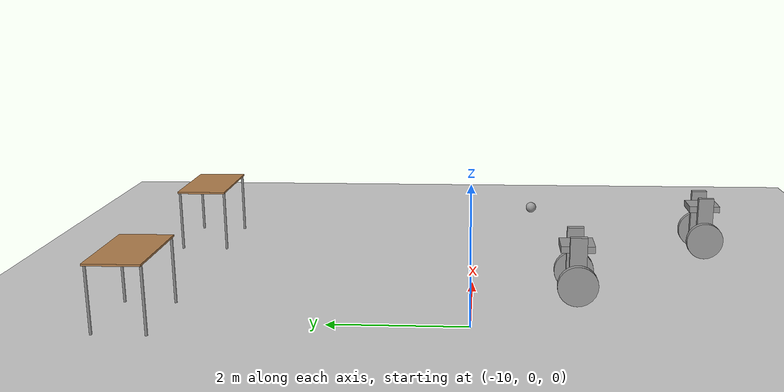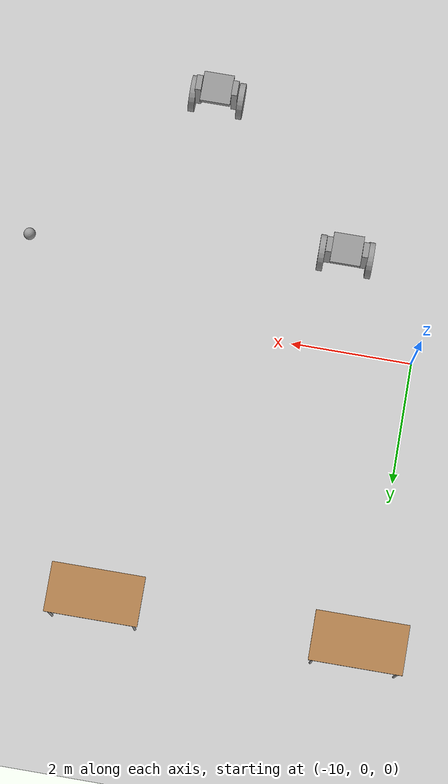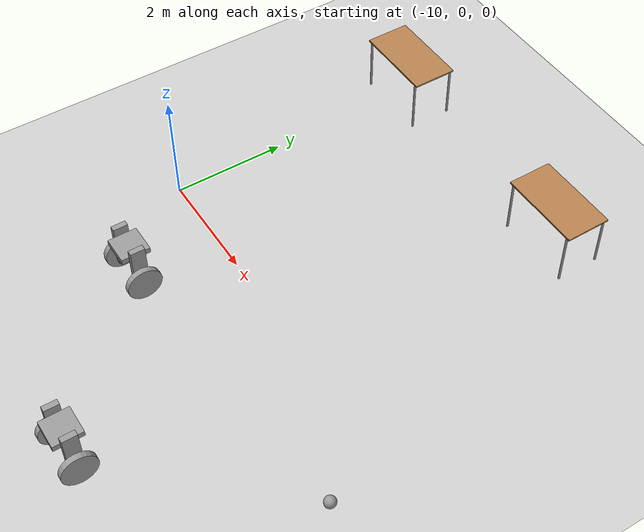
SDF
<sdf version="1.6">
 <world name="default">
  <model name="ground_plane">
   <static>1</static>
   <link name="link">
    <collision name="collision">
     <geometry><plane><normal>0 0 1</normal><size>100 100</size></plane></geometry>
     <surface><friction><ode><mu>100</mu><mu2>50</mu2></ode></friction></surface>
    </collision>
    <visual name="visual">
     <cast_shadows>0</cast_shadows>
     <geometry><plane><normal>0 0 1</normal><size>100 100</size></plane></geometry>
     <material>
      <script><uri>file://media/materials/scripts/gazebo.material</uri><name>Gazebo/Grey</name></script>
     </material>
    </visual>
   </link>
  </model>
  <model name="table">
   <static>1</static>
   <link name="link">
    <collision name="surface">
     <pose>0 0 1 0 -0 0</pose>
     <geometry><box><size>1.5 0.8 0.03</size></box></geometry>
     <surface><friction><ode><mu>0.6</mu><mu2>0.6</mu2></ode></friction></surface>
    </collision>
    <visual name="visual1">
     <pose>0 0 1 0 -0 0</pose>
     <geometry><box><size>1.5 0.8 0.03</size></box></geometry>
     <material>
      <script><uri>file://media/materials/scripts/gazebo.material</uri><name>Gazebo/Wood</name></script>
     </material>
    </visual>
    <collision name="front_left_leg">
     <pose>0.68 0.38 0.5 0 -0 0</pose>
     <geometry><cylinder><radius>0.02</radius><length>1</length></cylinder></geometry>
    </collision>
    <visual name="front_left_leg">
     <pose>0.68 0.38 0.5 0 -0 0</pose>
     <geometry><cylinder><radius>0.02</radius><length>1</length></cylinder></geometry>
     <material>
      <script><uri>file://media/materials/scripts/gazebo.material</uri><name>Gazebo/Grey</name></script>
     </material>
    </visual>
    <collision name="front_right_leg">
     <pose>0.68 -0.38 0.5 0 -0 0</pose>
     <geometry><cylinder><radius>0.02</radius><length>1</length></cylinder></geometry>
    </collision>
    <visual name="front_right_leg">
     <pose>0.68 -0.38 0.5 0 -0 0</pose>
     <geometry><cylinder><radius>0.02</radius><length>1</length></cylinder></geometry>
     <material>
      <script><uri>file://media/materials/scripts/gazebo.material</uri><name>Gazebo/Grey</name></script>
     </material>
    </visual>
    <collision name="back_right_leg">
     <pose>-0.68 -0.38 0.5 0 -0 0</pose>
     <geometry><cylinder><radius>0.02</radius><length>1</length></cylinder></geometry>
    </collision>
    <visual name="back_right_leg">
     <pose>-0.68 -0.38 0.5 0 -0 0</pose>
     <geometry><cylinder><radius>0.02</radius><length>1</length></cylinder></geometry>
     <material>
      <script><uri>file://media/materials/scripts/gazebo.material</uri><name>Gazebo/Grey</name></script>
     </material>
    </visual>
    <collision name="back_left_leg">
     <pose>-0.68 0.38 0.5 0 -0 0</pose>
     <geometry><cylinder><radius>0.02</radius><length>1</length></cylinder></geometry>
    </collision>
    <visual name="back_left_leg">
     <pose>-0.68 0.38 0.5 0 -0 0</pose>
     <geometry><cylinder><radius>0.02</radius><length>1</length></cylinder></geometry>
     <material>
      <script><uri>file://media/materials/scripts/gazebo.material</uri><name>Gazebo/Grey</name></script>
     </material>
    </visual>
   </link>
   <pose>-9.83112 4.7177 0 0 -0 0</pose>
  </model>
  <model name="table_0">
   <static>1</static>
   <link name="link">
    <collision name="surface">
     <pose>0 0 1 0 -0 0</pose>
     <geometry><box><size>1.5 0.8 0.03</size></box></geometry>
     <surface><friction><ode><mu>0.6</mu><mu2>0.6</mu2></ode></friction></surface>
    </collision>
    <visual name="visual1">
     <pose>0 0 1 0 -0 0</pose>
     <geometry><box><size>1.5 0.8 0.03</size></box></geometry>
     <material>
      <script><uri>file://media/materials/scripts/gazebo.material</uri><name>Gazebo/Wood</name></script>
     </material>
    </visual>
    <collision name="front_left_leg">
     <pose>0.68 0.38 0.5 0 -0 0</pose>
     <geometry><cylinder><radius>0.02</radius><length>1</length></cylinder></geometry>
    </collision>
    <visual name="front_left_leg">
     <pose>0.68 0.38 0.5 0 -0 0</pose>
     <geometry><cylinder><radius>0.02</radius><length>1</length></cylinder></geometry>
     <material>
      <script><uri>file://media/materials/scripts/gazebo.material</uri><name>Gazebo/Grey</name></script>
     </material>
    </visual>
    <collision name="front_right_leg">
     <pose>0.68 -0.38 0.5 0 -0 0</pose>
     <geometry><cylinder><radius>0.02</radius><length>1</length></cylinder></geometry>
    </collision>
    <visual name="front_right_leg">
     <pose>0.68 -0.38 0.5 0 -0 0</pose>
     <geometry><cylinder><radius>0.02</radius><length>1</length></cylinder></geometry>
     <material>
      <script><uri>file://media/materials/scripts/gazebo.material</uri><name>Gazebo/Grey</name></script>
     </material>
    </visual>
    <collision name="back_right_leg">
     <pose>-0.68 -0.38 0.5 0 -0 0</pose>
     <geometry><cylinder><radius>0.02</radius><length>1</length></cylinder></geometry>
    </collision>
    <visual name="back_right_leg">
     <pose>-0.68 -0.38 0.5 0 -0 0</pose>
     <geometry><cylinder><radius>0.02</radius><length>1</length></cylinder></geometry>
     <material>
      <script><uri>file://media/materials/scripts/gazebo.material</uri><name>Gazebo/Grey</name></script>
     </material>
    </visual>
    <collision name="back_left_leg">
     <pose>-0.68 0.38 0.5 0 -0 0</pose>
     <geometry><cylinder><radius>0.02</radius><length>1</length></cylinder></geometry>
    </collision>
    <visual name="back_left_leg">
     <pose>-0.68 0.38 0.5 0 -0 0</pose>
     <geometry><cylinder><radius>0.02</radius><length>1</length></cylinder></geometry>
     <material>
      <script><uri>file://media/materials/scripts/gazebo.material</uri><name>Gazebo/Grey</name></script>
     </material>
    </visual>
   </link>
   <pose>-5.60032 4.66973 0 0 -0 0</pose>
  </model>
  <model name="robot">
   <link name="link_0">
    <inertial>
     <mass>1</mass>
     <inertia>
      <ixx>0.166667</ixx>
      <ixy>0</ixy>
      <ixz>0</ixz>
      <iyy>0.166667</iyy>
      <iyz>0</iyz>
      <izz>0.166667</izz>
     </inertia>
    </inertial>
    <pose>-0.275 0.827554 -0.060043 0 -0 0</pose>
    <visual name="visual">
     <geometry><box><size>0.5 0.5 0.1</size></box></geometry>
     <material>
      <lighting>1</lighting>
      <script><uri>file://media/materials/scripts/gazebo.material</uri><name>Gazebo/Grey</name></script>
      <shader type="pixel"><normal_map>__default__</normal_map></shader>
      <ambient>0.3 0.3 0.3 1</ambient>
      <diffuse>0.7 0.7 0.7 1</diffuse>
      <specular>0.01 0.01 0.01 1</specular>
      <emissive>0 0 0 1</emissive>
     </material>
    </visual>
    <collision name="collision">
     <geometry><box><size>0.5 0.5 0.1</size></box></geometry>
     <surface>
      <friction>
       <ode><mu>1</mu><mu2>1</mu2><fdir1>0 0 0</fdir1><slip1>0</slip1><slip2>0</slip2></ode>
       <torsional>
        <coefficient>1</coefficient>
        <patch_radius>0</patch_radius>
        <surface_radius>0</surface_radius>
        <use_patch_radius>1</use_patch_radius>
        <ode><slip>0</slip></ode>
       </torsional>
      </friction>
      <bounce><restitution_coefficient>0</restitution_coefficient><threshold>1e+06</threshold></bounce>
      <contact>
       <collide_without_contact>0</collide_without_contact>
       <collide_without_contact_bitmask>1</collide_without_contact_bitmask>
       <collide_bitmask>1</collide_bitmask>
       <ode>
        <soft_cfm>0</soft_cfm>
        <soft_erp>0.2</soft_erp>
        <kp>1e+13</kp>
        <kd>1</kd>
        <max_vel>0.01</max_vel>
        <min_depth>0</min_depth>
       </ode>
       <bullet>
        <split_impulse>1</split_impulse>
        <split_impulse_penetration_threshold>-0.01</split_impulse_penetration_threshold>
        <soft_cfm>0</soft_cfm>
        <soft_erp>0.2</soft_erp>
        <kp>1e+13</kp>
        <kd>1</kd>
       </bullet>
      </contact>
     </surface>
    </collision>
   </link>
   <link name="link_1">
    <inertial>
     <mass>1</mass>
     <inertia>
      <ixx>0.166667</ixx>
      <ixy>0</ixy>
      <ixz>0</ixz>
      <iyy>0.166667</iyy>
      <iyz>0</iyz>
      <izz>0.166667</izz>
     </inertia>
    </inertial>
    <pose>0.025 0.827554 -0.260043 0 -0 0</pose>
    <visual name="visual">
     <geometry><box><size>0.1 0.25 0.8</size></box></geometry>
     <material>
      <lighting>1</lighting>
      <script><uri>file://media/materials/scripts/gazebo.material</uri><name>Gazebo/Grey</name></script>
      <shader type="pixel"><normal_map>__default__</normal_map></shader>
      <ambient>0.3 0.3 0.3 1</ambient>
      <diffuse>0.7 0.7 0.7 1</diffuse>
      <specular>0.01 0.01 0.01 1</specular>
      <emissive>0 0 0 1</emissive>
     </material>
    </visual>
    <collision name="collision">
     <geometry><box><size>0.1 0.25 0.8</size></box></geometry>
     <surface>
      <friction>
       <ode><mu>1</mu><mu2>1</mu2><fdir1>0 0 0</fdir1><slip1>0</slip1><slip2>0</slip2></ode>
       <torsional>
        <coefficient>1</coefficient>
        <patch_radius>0</patch_radius>
        <surface_radius>0</surface_radius>
        <use_patch_radius>1</use_patch_radius>
        <ode><slip>0</slip></ode>
       </torsional>
      </friction>
      <bounce><restitution_coefficient>0</restitution_coefficient><threshold>1e+06</threshold></bounce>
      <contact>
       <collide_without_contact>0</collide_without_contact>
       <collide_without_contact_bitmask>1</collide_without_contact_bitmask>
       <collide_bitmask>1</collide_bitmask>
       <ode>
        <soft_cfm>0</soft_cfm>
        <soft_erp>0.2</soft_erp>
        <kp>1e+13</kp>
        <kd>1</kd>
        <max_vel>0.01</max_vel>
        <min_depth>0</min_depth>
       </ode>
       <bullet>
        <split_impulse>1</split_impulse>
        <split_impulse_penetration_threshold>-0.01</split_impulse_penetration_threshold>
        <soft_cfm>0</soft_cfm>
        <soft_erp>0.2</soft_erp>
        <kp>1e+13</kp>
        <kd>1</kd>
       </bullet>
      </contact>
     </surface>
    </collision>
   </link>
   <link name="link_1_0">
    <inertial>
     <mass>1</mass>
     <inertia><ixx>0.145833</ixx><ixy>0</ixy><ixz>0</ixz><iyy>0.145833</iyy><iyz>0</iyz><izz>0.125</izz></inertia>
    </inertial>
    <pose>0.125 0.827554 -0.560043 0 1.57 0</pose>
    <visual name="visual">
     <geometry><cylinder><radius>0.3</radius><length>0.1</length></cylinder></geometry>
     <material>
      <lighting>1</lighting>
      <script><uri>file://media/materials/scripts/gazebo.material</uri><name>Gazebo/Grey</name></script>
      <shader type="pixel"><normal_map>__default__</normal_map></shader>
      <ambient>0.3 0.3 0.3 1</ambient>
      <diffuse>0.7 0.7 0.7 1</diffuse>
      <specular>0.01 0.01 0.01 1</specular>
      <emissive>0 0 0 1</emissive>
     </material>
    </visual>
    <collision name="collision">
     <geometry><cylinder><radius>0.3</radius><length>0.1</length></cylinder></geometry>
     <surface>
      <friction>
       <ode><mu>1</mu><mu2>1</mu2><fdir1>0 0 0</fdir1><slip1>0</slip1><slip2>0</slip2></ode>
       <torsional>
        <coefficient>1</coefficient>
        <patch_radius>0</patch_radius>
        <surface_radius>0</surface_radius>
        <use_patch_radius>1</use_patch_radius>
        <ode><slip>0</slip></ode>
       </torsional>
      </friction>
      <bounce><restitution_coefficient>0</restitution_coefficient><threshold>1e+06</threshold></bounce>
      <contact>
       <collide_without_contact>0</collide_without_contact>
       <collide_without_contact_bitmask>1</collide_without_contact_bitmask>
       <collide_bitmask>1</collide_bitmask>
       <ode>
        <soft_cfm>0</soft_cfm>
        <soft_erp>0.2</soft_erp>
        <kp>1e+13</kp>
        <kd>1</kd>
        <max_vel>0.01</max_vel>
        <min_depth>0</min_depth>
       </ode>
       <bullet>
        <split_impulse>1</split_impulse>
        <split_impulse_penetration_threshold>-0.01</split_impulse_penetration_threshold>
        <soft_cfm>0</soft_cfm>
        <soft_erp>0.2</soft_erp>
        <kp>1e+13</kp>
        <kd>1</kd>
       </bullet>
      </contact>
     </surface>
    </collision>
   </link>
   <link name="link_1_0_clone">
    <inertial>
     <mass>1</mass>
     <inertia><ixx>0.145833</ixx><ixy>0</ixy><ixz>0</ixz><iyy>0.145833</iyy><iyz>0</iyz><izz>0.125</izz></inertia>
    </inertial>
    <pose>-0.675 0.827554 -0.560043 0 1.57 0</pose>
    <visual name="visual_0">
     <geometry><cylinder><radius>0.3</radius><length>0.1</length></cylinder></geometry>
     <material>
      <lighting>1</lighting>
      <script><uri>file://media/materials/scripts/gazebo.material</uri><name>Gazebo/Grey</name></script>
      <shader type="pixel"><normal_map>__default__</normal_map></shader>
      <ambient>0.3 0.3 0.3 1</ambient>
      <diffuse>0.7 0.7 0.7 1</diffuse>
      <specular>0.01 0.01 0.01 1</specular>
      <emissive>0 0 0 1</emissive>
     </material>
    </visual>
    <collision name="collision">
     <geometry><cylinder><radius>0.3</radius><length>0.1</length></cylinder></geometry>
     <surface>
      <friction>
       <ode><mu>1</mu><mu2>1</mu2><fdir1>0 0 0</fdir1><slip1>0</slip1><slip2>0</slip2></ode>
       <torsional>
        <coefficient>1</coefficient>
        <patch_radius>0</patch_radius>
        <surface_radius>0</surface_radius>
        <use_patch_radius>1</use_patch_radius>
        <ode><slip>0</slip></ode>
       </torsional>
      </friction>
      <bounce><restitution_coefficient>0</restitution_coefficient><threshold>1e+06</threshold></bounce>
      <contact>
       <collide_without_contact>0</collide_without_contact>
       <collide_without_contact_bitmask>1</collide_without_contact_bitmask>
       <collide_bitmask>1</collide_bitmask>
       <ode>
        <soft_cfm>0</soft_cfm>
        <soft_erp>0.2</soft_erp>
        <kp>1e+13</kp>
        <kd>1</kd>
        <max_vel>0.01</max_vel>
        <min_depth>0</min_depth>
       </ode>
       <bullet>
        <split_impulse>1</split_impulse>
        <split_impulse_penetration_threshold>-0.01</split_impulse_penetration_threshold>
        <soft_cfm>0</soft_cfm>
        <soft_erp>0.2</soft_erp>
        <kp>1e+13</kp>
        <kd>1</kd>
       </bullet>
      </contact>
     </surface>
    </collision>
   </link>
   <link name="link_1_clone">
    <inertial>
     <mass>1</mass>
     <inertia>
      <ixx>0.166667</ixx>
      <ixy>0</ixy>
      <ixz>0</ixz>
      <iyy>0.166667</iyy>
      <iyz>0</iyz>
      <izz>0.166667</izz>
     </inertia>
    </inertial>
    <pose>-0.575 0.827554 -0.260043 0 -0 0</pose>
    <visual name="visual">
     <geometry><box><size>0.1 0.25 0.81</size></box></geometry>
     <material>
      <lighting>1</lighting>
      <script><uri>file://media/materials/scripts/gazebo.material</uri><name>Gazebo/Grey</name></script>
      <shader type="pixel"><normal_map>__default__</normal_map></shader>
      <ambient>0.3 0.3 0.3 1</ambient>
      <diffuse>0.7 0.7 0.7 1</diffuse>
      <specular>0.01 0.01 0.01 1</specular>
      <emissive>0 0 0 1</emissive>
     </material>
    </visual>
    <collision name="collision">
     <geometry><box><size>0.1 0.25 0.8</size></box></geometry>
     <surface>
      <friction>
       <ode><mu>1</mu><mu2>1</mu2><fdir1>0 0 0</fdir1><slip1>0</slip1><slip2>0</slip2></ode>
       <torsional>
        <coefficient>1</coefficient>
        <patch_radius>0</patch_radius>
        <surface_radius>0</surface_radius>
        <use_patch_radius>1</use_patch_radius>
        <ode><slip>0</slip></ode>
       </torsional>
      </friction>
      <bounce><restitution_coefficient>0</restitution_coefficient><threshold>1e+06</threshold></bounce>
      <contact>
       <collide_without_contact>0</collide_without_contact>
       <collide_without_contact_bitmask>1</collide_without_contact_bitmask>
       <collide_bitmask>1</collide_bitmask>
       <ode>
        <soft_cfm>0</soft_cfm>
        <soft_erp>0.2</soft_erp>
        <kp>1e+13</kp>
        <kd>1</kd>
        <max_vel>0.01</max_vel>
        <min_depth>0</min_depth>
       </ode>
       <bullet>
        <split_impulse>1</split_impulse>
        <split_impulse_penetration_threshold>-0.01</split_impulse_penetration_threshold>
        <soft_cfm>0</soft_cfm>
        <soft_erp>0.2</soft_erp>
        <kp>1e+13</kp>
        <kd>1</kd>
       </bullet>
      </contact>
     </surface>
    </collision>
   </link>
   <joint name="link_0_JOINT_0_0" type="revolute">
    <parent>link_0</parent>
    <child>link_1_clone</child>
    <pose>0 0 0.2 0 -0 0</pose>
    <axis>
     <xyz>1 0 0</xyz>
     <use_parent_model_frame>0</use_parent_model_frame>
     <limit>
      <lower>-1.79769e+308</lower>
      <upper>1.79769e+308</upper>
      <effort>-1</effort>
      <velocity>-1</velocity>
     </limit>
     <dynamics>
      <spring_reference>0</spring_reference>
      <spring_stiffness>0</spring_stiffness>
      <damping>0</damping>
      <friction>0</friction>
     </dynamics>
    </axis>
    <physics>
     <ode><limit><cfm>0</cfm><erp>0.2</erp></limit><suspension><cfm>0</cfm><erp>0.2</erp></suspension></ode>
    </physics>
   </joint>
   <joint name="link_0_JOINT_2" type="revolute">
    <parent>link_0</parent>
    <child>link_1</child>
    <pose>0 0 0.2 0 -0 0</pose>
    <axis>
     <xyz>1 0 0</xyz>
     <use_parent_model_frame>0</use_parent_model_frame>
     <limit>
      <lower>-1.79769e+308</lower>
      <upper>1.79769e+308</upper>
      <effort>-1</effort>
      <velocity>-1</velocity>
     </limit>
     <dynamics>
      <spring_reference>0</spring_reference>
      <spring_stiffness>0</spring_stiffness>
      <damping>0</damping>
      <friction>0</friction>
     </dynamics>
    </axis>
    <physics>
     <ode><limit><cfm>0</cfm><erp>0.2</erp></limit><suspension><cfm>0</cfm><erp>0.2</erp></suspension></ode>
    </physics>
   </joint>
   <joint name="link_1_JOINT_3" type="revolute">
    <parent>link_1</parent>
    <child>link_1_0</child>
    <axis>
     <xyz>0 0 1</xyz>
     <use_parent_model_frame>0</use_parent_model_frame>
     <limit>
      <lower>-1.79769e+308</lower>
      <upper>1.79769e+308</upper>
      <effort>-1</effort>
      <velocity>-1</velocity>
     </limit>
     <dynamics>
      <spring_reference>0</spring_reference>
      <spring_stiffness>0</spring_stiffness>
      <damping>0</damping>
      <friction>0</friction>
     </dynamics>
    </axis>
    <physics>
     <ode><limit><cfm>0</cfm><erp>0.2</erp></limit><suspension><cfm>0</cfm><erp>0.2</erp></suspension></ode>
    </physics>
   </joint>
   <joint name="link_1_clone_JOINT_1" type="revolute">
    <parent>link_1_clone</parent>
    <child>link_1_0_clone</child>
    <axis>
     <xyz>0 0 1</xyz>
     <use_parent_model_frame>0</use_parent_model_frame>
     <limit>
      <lower>-1.79769e+308</lower>
      <upper>1.79769e+308</upper>
      <effort>-1</effort>
      <velocity>-1</velocity>
     </limit>
     <dynamics>
      <spring_reference>0</spring_reference>
      <spring_stiffness>0</spring_stiffness>
      <damping>0</damping>
      <friction>0</friction>
     </dynamics>
    </axis>
    <physics>
     <ode><limit><cfm>0</cfm><erp>0.2</erp></limit><suspension><cfm>0</cfm><erp>0.2</erp></suspension></ode>
    </physics>
   </joint>
   <static>0</static>
   <pose>-8.36677 -2.3659 0.86008 0 5e-06 0</pose>
  </model>
  <model name="robot_clone">
   <link name="link_0">
    <inertial>
     <mass>1</mass>
     <inertia>
      <ixx>0.166667</ixx>
      <ixy>0</ixy>
      <ixz>0</ixz>
      <iyy>0.166667</iyy>
      <iyz>0</iyz>
      <izz>0.166667</izz>
     </inertia>
    </inertial>
    <pose>-0.275 0.827554 -0.060043 0 -0 0</pose>
    <visual name="visual">
     <geometry><box><size>0.5 0.5 0.1</size></box></geometry>
     <material>
      <lighting>1</lighting>
      <script><uri>file://media/materials/scripts/gazebo.material</uri><name>Gazebo/Grey</name></script>
      <shader type="pixel"><normal_map>__default__</normal_map></shader>
      <ambient>0.3 0.3 0.3 1</ambient>
      <diffuse>0.7 0.7 0.7 1</diffuse>
      <specular>0.01 0.01 0.01 1</specular>
      <emissive>0 0 0 1</emissive>
     </material>
    </visual>
    <collision name="collision">
     <geometry><box><size>0.5 0.5 0.1</size></box></geometry>
     <surface>
      <friction>
       <ode><mu>1</mu><mu2>1</mu2><fdir1>0 0 0</fdir1><slip1>0</slip1><slip2>0</slip2></ode>
       <torsional>
        <coefficient>1</coefficient>
        <patch_radius>0</patch_radius>
        <surface_radius>0</surface_radius>
        <use_patch_radius>1</use_patch_radius>
        <ode><slip>0</slip></ode>
       </torsional>
      </friction>
      <bounce><restitution_coefficient>0</restitution_coefficient><threshold>1e+06</threshold></bounce>
      <contact>
       <collide_without_contact>0</collide_without_contact>
       <collide_without_contact_bitmask>1</collide_without_contact_bitmask>
       <collide_bitmask>1</collide_bitmask>
       <ode>
        <soft_cfm>0</soft_cfm>
        <soft_erp>0.2</soft_erp>
        <kp>1e+13</kp>
        <kd>1</kd>
        <max_vel>0.01</max_vel>
        <min_depth>0</min_depth>
       </ode>
       <bullet>
        <split_impulse>1</split_impulse>
        <split_impulse_penetration_threshold>-0.01</split_impulse_penetration_threshold>
        <soft_cfm>0</soft_cfm>
        <soft_erp>0.2</soft_erp>
        <kp>1e+13</kp>
        <kd>1</kd>
       </bullet>
      </contact>
     </surface>
    </collision>
   </link>
   <link name="link_1">
    <inertial>
     <mass>1</mass>
     <inertia>
      <ixx>0.166667</ixx>
      <ixy>0</ixy>
      <ixz>0</ixz>
      <iyy>0.166667</iyy>
      <iyz>0</iyz>
      <izz>0.166667</izz>
     </inertia>
    </inertial>
    <pose>0.025 0.827554 -0.260043 0 -0 0</pose>
    <visual name="visual">
     <geometry><box><size>0.1 0.25 0.8</size></box></geometry>
     <material>
      <lighting>1</lighting>
      <script><uri>file://media/materials/scripts/gazebo.material</uri><name>Gazebo/Grey</name></script>
      <shader type="pixel"><normal_map>__default__</normal_map></shader>
      <ambient>0.3 0.3 0.3 1</ambient>
      <diffuse>0.7 0.7 0.7 1</diffuse>
      <specular>0.01 0.01 0.01 1</specular>
      <emissive>0 0 0 1</emissive>
     </material>
    </visual>
    <collision name="collision">
     <geometry><box><size>0.1 0.25 0.8</size></box></geometry>
     <surface>
      <friction>
       <ode><mu>1</mu><mu2>1</mu2><fdir1>0 0 0</fdir1><slip1>0</slip1><slip2>0</slip2></ode>
       <torsional>
        <coefficient>1</coefficient>
        <patch_radius>0</patch_radius>
        <surface_radius>0</surface_radius>
        <use_patch_radius>1</use_patch_radius>
        <ode><slip>0</slip></ode>
       </torsional>
      </friction>
      <bounce><restitution_coefficient>0</restitution_coefficient><threshold>1e+06</threshold></bounce>
      <contact>
       <collide_without_contact>0</collide_without_contact>
       <collide_without_contact_bitmask>1</collide_without_contact_bitmask>
       <collide_bitmask>1</collide_bitmask>
       <ode>
        <soft_cfm>0</soft_cfm>
        <soft_erp>0.2</soft_erp>
        <kp>1e+13</kp>
        <kd>1</kd>
        <max_vel>0.01</max_vel>
        <min_depth>0</min_depth>
       </ode>
       <bullet>
        <split_impulse>1</split_impulse>
        <split_impulse_penetration_threshold>-0.01</split_impulse_penetration_threshold>
        <soft_cfm>0</soft_cfm>
        <soft_erp>0.2</soft_erp>
        <kp>1e+13</kp>
        <kd>1</kd>
       </bullet>
      </contact>
     </surface>
    </collision>
   </link>
   <link name="link_1_0">
    <inertial>
     <mass>1</mass>
     <inertia><ixx>0.145833</ixx><ixy>0</ixy><ixz>0</ixz><iyy>0.145833</iyy><iyz>0</iyz><izz>0.125</izz></inertia>
    </inertial>
    <pose>0.125 0.827554 -0.560043 0 1.57 0</pose>
    <visual name="visual">
     <geometry><cylinder><radius>0.3</radius><length>0.1</length></cylinder></geometry>
     <material>
      <lighting>1</lighting>
      <script><uri>file://media/materials/scripts/gazebo.material</uri><name>Gazebo/Grey</name></script>
      <shader type="pixel"><normal_map>__default__</normal_map></shader>
      <ambient>0.3 0.3 0.3 1</ambient>
      <diffuse>0.7 0.7 0.7 1</diffuse>
      <specular>0.01 0.01 0.01 1</specular>
      <emissive>0 0 0 1</emissive>
     </material>
    </visual>
    <collision name="collision">
     <geometry><cylinder><radius>0.3</radius><length>0.1</length></cylinder></geometry>
     <surface>
      <friction>
       <ode><mu>1</mu><mu2>1</mu2><fdir1>0 0 0</fdir1><slip1>0</slip1><slip2>0</slip2></ode>
       <torsional>
        <coefficient>1</coefficient>
        <patch_radius>0</patch_radius>
        <surface_radius>0</surface_radius>
        <use_patch_radius>1</use_patch_radius>
        <ode><slip>0</slip></ode>
       </torsional>
      </friction>
      <bounce><restitution_coefficient>0</restitution_coefficient><threshold>1e+06</threshold></bounce>
      <contact>
       <collide_without_contact>0</collide_without_contact>
       <collide_without_contact_bitmask>1</collide_without_contact_bitmask>
       <collide_bitmask>1</collide_bitmask>
       <ode>
        <soft_cfm>0</soft_cfm>
        <soft_erp>0.2</soft_erp>
        <kp>1e+13</kp>
        <kd>1</kd>
        <max_vel>0.01</max_vel>
        <min_depth>0</min_depth>
       </ode>
       <bullet>
        <split_impulse>1</split_impulse>
        <split_impulse_penetration_threshold>-0.01</split_impulse_penetration_threshold>
        <soft_cfm>0</soft_cfm>
        <soft_erp>0.2</soft_erp>
        <kp>1e+13</kp>
        <kd>1</kd>
       </bullet>
      </contact>
     </surface>
    </collision>
   </link>
   <link name="link_1_0_clone">
    <inertial>
     <mass>1</mass>
     <inertia><ixx>0.145833</ixx><ixy>0</ixy><ixz>0</ixz><iyy>0.145833</iyy><iyz>0</iyz><izz>0.125</izz></inertia>
    </inertial>
    <pose>-0.675 0.827554 -0.560043 0 1.57 0</pose>
    <visual name="visual_0">
     <geometry><cylinder><radius>0.3</radius><length>0.1</length></cylinder></geometry>
     <material>
      <lighting>1</lighting>
      <script><uri>file://media/materials/scripts/gazebo.material</uri><name>Gazebo/Grey</name></script>
      <shader type="pixel"><normal_map>__default__</normal_map></shader>
      <ambient>0.3 0.3 0.3 1</ambient>
      <diffuse>0.7 0.7 0.7 1</diffuse>
      <specular>0.01 0.01 0.01 1</specular>
      <emissive>0 0 0 1</emissive>
     </material>
    </visual>
    <collision name="collision">
     <geometry><cylinder><radius>0.3</radius><length>0.1</length></cylinder></geometry>
     <surface>
      <friction>
       <ode><mu>1</mu><mu2>1</mu2><fdir1>0 0 0</fdir1><slip1>0</slip1><slip2>0</slip2></ode>
       <torsional>
        <coefficient>1</coefficient>
        <patch_radius>0</patch_radius>
        <surface_radius>0</surface_radius>
        <use_patch_radius>1</use_patch_radius>
        <ode><slip>0</slip></ode>
       </torsional>
      </friction>
      <bounce><restitution_coefficient>0</restitution_coefficient><threshold>1e+06</threshold></bounce>
      <contact>
       <collide_without_contact>0</collide_without_contact>
       <collide_without_contact_bitmask>1</collide_without_contact_bitmask>
       <collide_bitmask>1</collide_bitmask>
       <ode>
        <soft_cfm>0</soft_cfm>
        <soft_erp>0.2</soft_erp>
        <kp>1e+13</kp>
        <kd>1</kd>
        <max_vel>0.01</max_vel>
        <min_depth>0</min_depth>
       </ode>
       <bullet>
        <split_impulse>1</split_impulse>
        <split_impulse_penetration_threshold>-0.01</split_impulse_penetration_threshold>
        <soft_cfm>0</soft_cfm>
        <soft_erp>0.2</soft_erp>
        <kp>1e+13</kp>
        <kd>1</kd>
       </bullet>
      </contact>
     </surface>
    </collision>
   </link>
   <link name="link_1_clone">
    <inertial>
     <mass>1</mass>
     <inertia>
      <ixx>0.166667</ixx>
      <ixy>0</ixy>
      <ixz>0</ixz>
      <iyy>0.166667</iyy>
      <iyz>0</iyz>
      <izz>0.166667</izz>
     </inertia>
    </inertial>
    <pose>-0.575 0.827554 -0.260043 0 -0 0</pose>
    <visual name="visual">
     <geometry><box><size>0.1 0.25 0.81</size></box></geometry>
     <material>
      <lighting>1</lighting>
      <script><uri>file://media/materials/scripts/gazebo.material</uri><name>Gazebo/Grey</name></script>
      <shader type="pixel"><normal_map>__default__</normal_map></shader>
      <ambient>0.3 0.3 0.3 1</ambient>
      <diffuse>0.7 0.7 0.7 1</diffuse>
      <specular>0.01 0.01 0.01 1</specular>
      <emissive>0 0 0 1</emissive>
     </material>
    </visual>
    <collision name="collision">
     <geometry><box><size>0.1 0.25 0.8</size></box></geometry>
     <surface>
      <friction>
       <ode><mu>1</mu><mu2>1</mu2><fdir1>0 0 0</fdir1><slip1>0</slip1><slip2>0</slip2></ode>
       <torsional>
        <coefficient>1</coefficient>
        <patch_radius>0</patch_radius>
        <surface_radius>0</surface_radius>
        <use_patch_radius>1</use_patch_radius>
        <ode><slip>0</slip></ode>
       </torsional>
      </friction>
      <bounce><restitution_coefficient>0</restitution_coefficient><threshold>1e+06</threshold></bounce>
      <contact>
       <collide_without_contact>0</collide_without_contact>
       <collide_without_contact_bitmask>1</collide_without_contact_bitmask>
       <collide_bitmask>1</collide_bitmask>
       <ode>
        <soft_cfm>0</soft_cfm>
        <soft_erp>0.2</soft_erp>
        <kp>1e+13</kp>
        <kd>1</kd>
        <max_vel>0.01</max_vel>
        <min_depth>0</min_depth>
       </ode>
       <bullet>
        <split_impulse>1</split_impulse>
        <split_impulse_penetration_threshold>-0.01</split_impulse_penetration_threshold>
        <soft_cfm>0</soft_cfm>
        <soft_erp>0.2</soft_erp>
        <kp>1e+13</kp>
        <kd>1</kd>
       </bullet>
      </contact>
     </surface>
    </collision>
   </link>
   <joint name="link_0_JOINT_0_0" type="revolute">
    <parent>link_0</parent>
    <child>link_1_clone</child>
    <pose>0 0 0.2 0 -0 0</pose>
    <axis>
     <xyz>1 0 0</xyz>
     <use_parent_model_frame>0</use_parent_model_frame>
     <limit>
      <lower>-1.79769e+308</lower>
      <upper>1.79769e+308</upper>
      <effort>-1</effort>
      <velocity>-1</velocity>
     </limit>
     <dynamics>
      <spring_reference>0</spring_reference>
      <spring_stiffness>0</spring_stiffness>
      <damping>0</damping>
      <friction>0</friction>
     </dynamics>
    </axis>
    <physics>
     <ode><limit><cfm>0</cfm><erp>0.2</erp></limit><suspension><cfm>0</cfm><erp>0.2</erp></suspension></ode>
    </physics>
   </joint>
   <joint name="link_0_JOINT_2" type="revolute">
    <parent>link_0</parent>
    <child>link_1</child>
    <pose>0 0 0.2 0 -0 0</pose>
    <axis>
     <xyz>1 0 0</xyz>
     <use_parent_model_frame>0</use_parent_model_frame>
     <limit>
      <lower>-1.79769e+308</lower>
      <upper>1.79769e+308</upper>
      <effort>-1</effort>
      <velocity>-1</velocity>
     </limit>
     <dynamics>
      <spring_reference>0</spring_reference>
      <spring_stiffness>0</spring_stiffness>
      <damping>0</damping>
      <friction>0</friction>
     </dynamics>
    </axis>
    <physics>
     <ode><limit><cfm>0</cfm><erp>0.2</erp></limit><suspension><cfm>0</cfm><erp>0.2</erp></suspension></ode>
    </physics>
   </joint>
   <joint name="link_1_JOINT_3" type="revolute">
    <parent>link_1</parent>
    <child>link_1_0</child>
    <axis>
     <xyz>0 0 1</xyz>
     <use_parent_model_frame>0</use_parent_model_frame>
     <limit>
      <lower>-1.79769e+308</lower>
      <upper>1.79769e+308</upper>
      <effort>-1</effort>
      <velocity>-1</velocity>
     </limit>
     <dynamics>
      <spring_reference>0</spring_reference>
      <spring_stiffness>0</spring_stiffness>
      <damping>0</damping>
      <friction>0</friction>
     </dynamics>
    </axis>
    <physics>
     <ode><limit><cfm>0</cfm><erp>0.2</erp></limit><suspension><cfm>0</cfm><erp>0.2</erp></suspension></ode>
    </physics>
   </joint>
   <joint name="link_1_clone_JOINT_1" type="revolute">
    <parent>link_1_clone</parent>
    <child>link_1_0_clone</child>
    <axis>
     <xyz>0 0 1</xyz>
     <use_parent_model_frame>0</use_parent_model_frame>
     <limit>
      <lower>-1.79769e+308</lower>
      <upper>1.79769e+308</upper>
      <effort>-1</effort>
      <velocity>-1</velocity>
     </limit>
     <dynamics>
      <spring_reference>0</spring_reference>
      <spring_stiffness>0</spring_stiffness>
      <damping>0</damping>
      <friction>0</friction>
     </dynamics>
    </axis>
    <physics>
     <ode><limit><cfm>0</cfm><erp>0.2</erp></limit><suspension><cfm>0</cfm><erp>0.2</erp></suspension></ode>
    </physics>
   </joint>
   <static>0</static>
   <pose>-5.8265 -4.68642 0.86008 0 5e-06 0</pose>
  </model>
  <model name="my_ball">
   <link name="link_0">
    <inertial>
     <mass>1</mass>
     <inertia><ixx>0.1</ixx><ixy>0</ixy><ixz>0</ixz><iyy>0.1</iyy><iyz>0</iyz><izz>0.1</izz></inertia>
    </inertial>
    <visual name="visual">
     <geometry><sphere><radius>0.1</radius></sphere></geometry>
     <material>
      <lighting>1</lighting>
      <script><uri>file://media/materials/scripts/gazebo.material</uri><name>Gazebo/Grey</name></script>
      <shader type="pixel"><normal_map>__default__</normal_map></shader>
      <ambient>1 1 1 1</ambient>
      <diffuse>1 1 1 1</diffuse>
      <specular>1 1 1 1</specular>
      <emissive>1 1 1 1</emissive>
     </material>
    </visual>
    <collision name="collision">
     <geometry><sphere><radius>0.1</radius></sphere></geometry>
     <surface>
      <friction>
       <ode><mu>1</mu><mu2>1</mu2><fdir1>0 0 0</fdir1><slip1>0</slip1><slip2>0</slip2></ode>
       <torsional>
        <coefficient>1</coefficient>
        <patch_radius>0</patch_radius>
        <surface_radius>0</surface_radius>
        <use_patch_radius>1</use_patch_radius>
        <ode><slip>0</slip></ode>
       </torsional>
      </friction>
      <bounce><restitution_coefficient>0</restitution_coefficient><threshold>1e+06</threshold></bounce>
      <contact>
       <collide_without_contact>0</collide_without_contact>
       <collide_without_contact_bitmask>1</collide_without_contact_bitmask>
       <collide_bitmask>1</collide_bitmask>
       <ode>
        <soft_cfm>0</soft_cfm>
        <soft_erp>0.2</soft_erp>
        <kp>1e+13</kp>
        <kd>1</kd>
        <max_vel>0.01</max_vel>
        <min_depth>0</min_depth>
       </ode>
       <bullet>
        <split_impulse>1</split_impulse>
        <split_impulse_penetration_threshold>-0.01</split_impulse_penetration_threshold>
        <soft_cfm>0</soft_cfm>
        <soft_erp>0.2</soft_erp>
        <kp>1e+13</kp>
        <kd>1</kd>
       </bullet>
      </contact>
     </surface>
    </collision>
   </link>
   <static>0</static>
   <pose>-3.42342 -1.08633 0.1 0 -0 0</pose>
  </model>
 </world>
</sdf>
